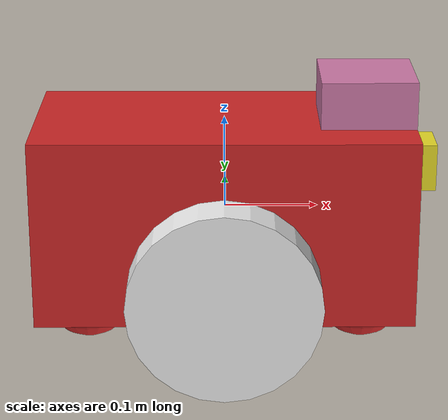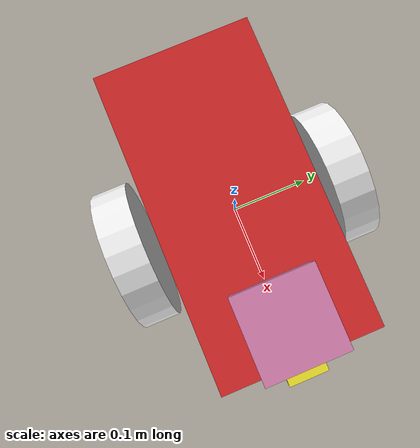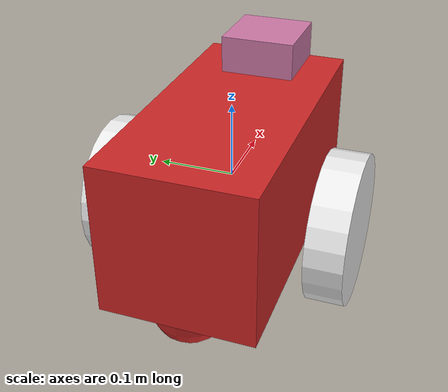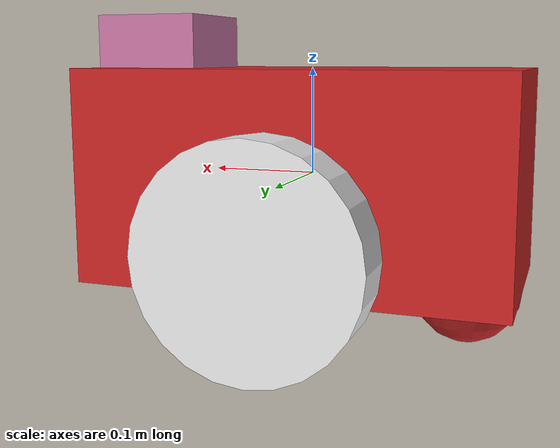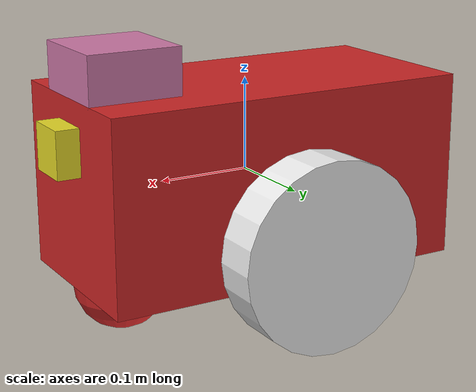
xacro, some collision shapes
<?xml version='1.0'?>

<robot name="my_robot" xmlns:xacro="http://www.ros.org/wiki/xacro">

<xacro:include filename="$(find my_robot)/urdf/my_robot.gazebo" />

  <link name="robot_footprint"></link>

  <joint name="robot_footprint_joint" type="fixed">
    <origin xyz="0 0 0" rpy="0 0 0" />
    <parent link="robot_footprint"/>
    <child link="chassis" />
  </joint>

  <link name='chassis'>
    <pose>0 0 0.1 0 0 0</pose>

    <inertial>
      <mass value="15.0"/>
      <origin xyz="0.0 0 0" rpy=" 0 0 0"/>
      <inertia
          ixx="0.1" ixy="0" ixz="0"
          iyy="0.1" iyz="0"
          izz="0.1"
      />
    </inertial>

    <collision name='collision'>
      <origin xyz="0 0 0" rpy=" 0 0 0"/>
      <geometry>
        <box size=".4 .2 .2"/>
      </geometry>
    </collision>

    <visual name='chassis_visual'>
      <origin xyz="0 0 0" rpy=" 0 0 0"/>
      <geometry>
        <box size=".4 .2 .2"/>
      </geometry>
    </visual>

    <collision name='back_caster_collision'>
      <origin xyz="-0.15 0 -0.1" rpy=" 0 0 0"/>
      <geometry>
        <sphere radius="0.0499"/>
      </geometry>
    </collision>

    <visual name='back_caster_visual'>
      <origin xyz="-0.15 0 -0.1" rpy=" 0 0 0"/>
      <geometry>
        <sphere radius="0.05"/>
      </geometry>
    </visual>

    <collision name='front_caster_collision'>
      <origin xyz="0.15 0 -0.1" rpy=" 0 0 0"/>
      <geometry>
        <sphere radius="0.0499"/>
      </geometry>
    </collision>

    <visual name='front_caster_visual'>
      <origin xyz="0.15 0 -0.1" rpy=" 0 0 0"/>
      <geometry>
        <sphere radius="0.05"/>
      </geometry>
    </visual>

  </link>

  <link name = "left_wheel">
  	<inertial>
  		<origin xyz="0 0 0" rpy="0 1.5707 1.5707"/>
  		<mass value = "5"/>
  		<inertia ixx="0.1" ixy="0" ixz="0" iyy="0.1" iyz="0" izz="0.1"/>
  	</inertial>

  	<visual name="left_wheel">
  		<origin xyz="0 0 0" rpy="0 1.5707 1.5707"/>
  		<geometry>
  			<cylinder radius="0.1" length="0.05"/>
  		</geometry>
  	</visual>

	<collision name="left_wheel">
  		<origin xyz="0 0 0" rpy="0 1.5707 1.5707"/>
  		<geometry>
  			<cylinder radius="0.1" length="0.05"/>
  		</geometry>
  	</collision>
  </link>

  <link name = "right_wheel">
  	<inertial>
  		<origin xyz="0 0 0" rpy="0 1.5707 1.5707"/>
  		<mass value = "5"/>
  		<inertia ixx="0.1" ixy="0" ixz="0" iyy="0.1" iyz="0" izz="0.1"/>
  	</inertial>

  	<visual name="right_wheel">
  		<origin xyz="0 0 0" rpy="0 1.5707 1.5707"/>
  		<geometry>
  			<cylinder radius="0.1" length="0.05"/>
  		</geometry>
  	</visual>

	<collision name="right_wheel">
  		<origin xyz="0 0 0" rpy="0 1.5707 1.5707"/>
  		<geometry>
  			<cylinder radius="0.1" length="0.05"/>
  		</geometry>
  	</collision>
  </link>

  <joint type="continuous" name="left_wheel_hinge">
    <origin xyz="0 0.15 -0.05" rpy="0 0 0"/>
    <child link="left_wheel"/>
    <parent link="chassis"/>
    <axis xyz="0 1 0" rpy="0 0 0"/>
    <limit effort="10000" velocity="1000"/>
    <dynamics damping="1.0" friction="1.0"/>
  </joint>

  <joint type="continuous" name="right_wheel_hinge">
    <origin xyz="0 -0.15 -0.05" rpy="0 0 0"/>
    <child link="right_wheel"/>
    <parent link="chassis"/>
    <axis xyz="0 1 0" rpy="0 0 0"/>
    <limit effort="10000" velocity="1000"/>
    <dynamics damping="1.0" friction="1.0"/>
  </joint>

  <link name="camera">
  	<collision name="camera">
  		<origin xyz="0 0 0" rpy="0 0 0"/>
  		<geometry>
  			<box size="0.05 0.05 0.05"/>
  		</geometry>
  	</collision>

	<visual name="camera">
  		<origin xyz="0 0 0" rpy="0 0 0"/>
  		<geometry>
  			<box size="0.05 0.05 0.05"/>
  		</geometry>
  	</visual>

  	<inertial name="camera">
  		<origin xyz="0 0 0" rpy="0 0 0"/>
  		<mass value="0.1"/>
  		<inertia ixx="1e-6" ixy="0" ixz="0" iyy="1e-6" iyz="0" izz="1e-6"/>
  	</inertial>

  </link>

  <joint type= "fixed" name="camera_joint">
  	<origin xyz="0.2 0 0.05" rpy="0 0 0"/>
  	<child link="camera"/>
  	<parent link="chassis"/>
  	<axis xyz="0 1 0" rpy="0 0 0"/>
  </joint>

  <link name="camera_link_optical">
  </link>

  <joint name="camera_optical_joint" type="fixed">
    <origin xyz="0 0 0" rpy="-1.5707 0 -1.5707"/>
    <parent link="camera"/>
    <child link="camera_link_optical"/>
  </joint>

  <link name="hokuyo">
    <visual name="hokuyo">
      <origin xyz="0 0 0" rpy="0 0 0"/>
      <geometry>
        <mesh filename="package://my_robot/meshes/hokuyo.dae"/>
      </geometry>
    </visual>

    <collision name="hokuyo">
      <origin xyz="0 0 0" rpy="0 0 0"/>
      <geometry>
        <box size="0.1 0.1 0.1"/>
      </geometry>
    </collision>

    <inertial name="hokuyo">
      <mass value="1e-5"/>
      <origin xyz="0 0 0" rpy="0 0 0"/>
      <inertia ixx="1e-6" ixy="0" ixz="0" iyy="1e-6" iyz="0" izz="1e-6"/>
    </inertial>
  </link>

    <joint type="fixed" name="hokuyo_joint">
      <origin xyz="0.15 0 0.1" rpy="0 0 0"/>
      <child link="hokuyo"/>
      <parent link="chassis"/>
      <axis xyz="0 1 0" rpy="0 0 0"/>
    </joint>

<gazebo reference="chassis">
    <material>Gazebo/Red</material>
</gazebo>

<gazebo reference="left_wheel">
    <material>Gazebo/White</material>
</gazebo>

<gazebo reference="right_wheel">
    <material>Gazebo/White</material>
</gazebo>

<gazebo reference="camera">
    <material>Gazebo/Yellow</material>
</gazebo>

<gazebo reference="back_caster_visual">
    <material>Gazebo/Blue</material>
</gazebo>

<gazebo reference="front_caster_visual">
    <material>Gazebo/Blue</material>
</gazebo>

</robot>
